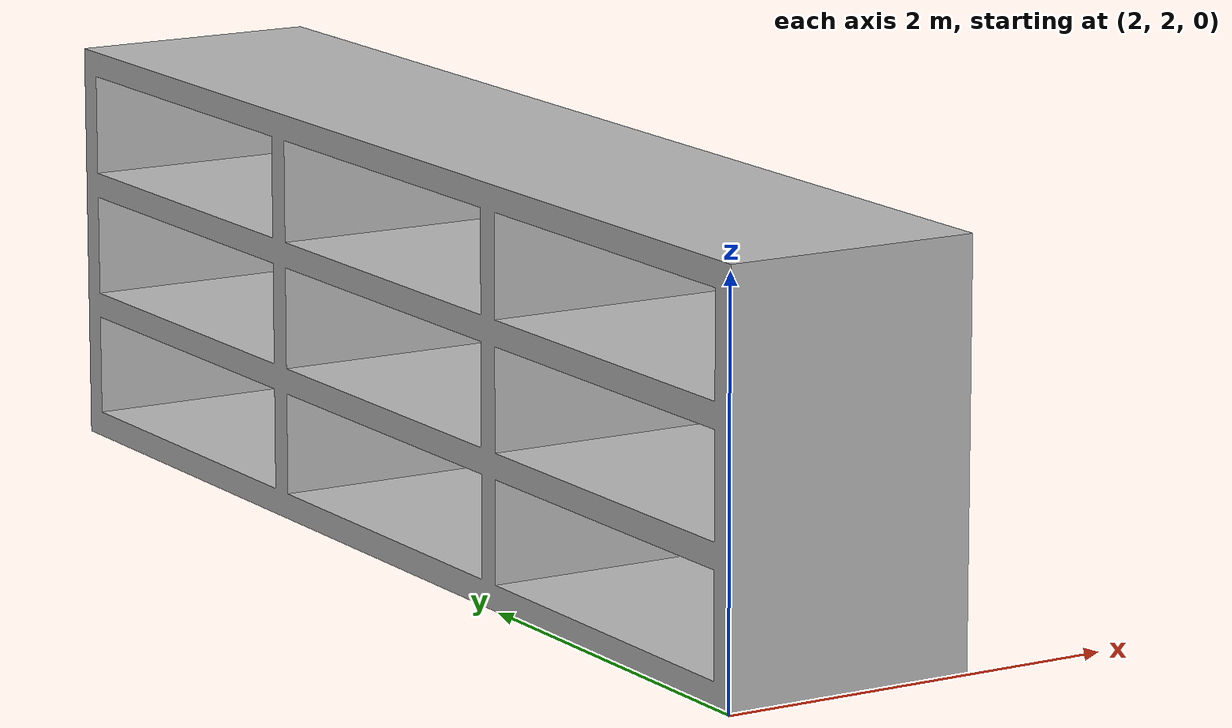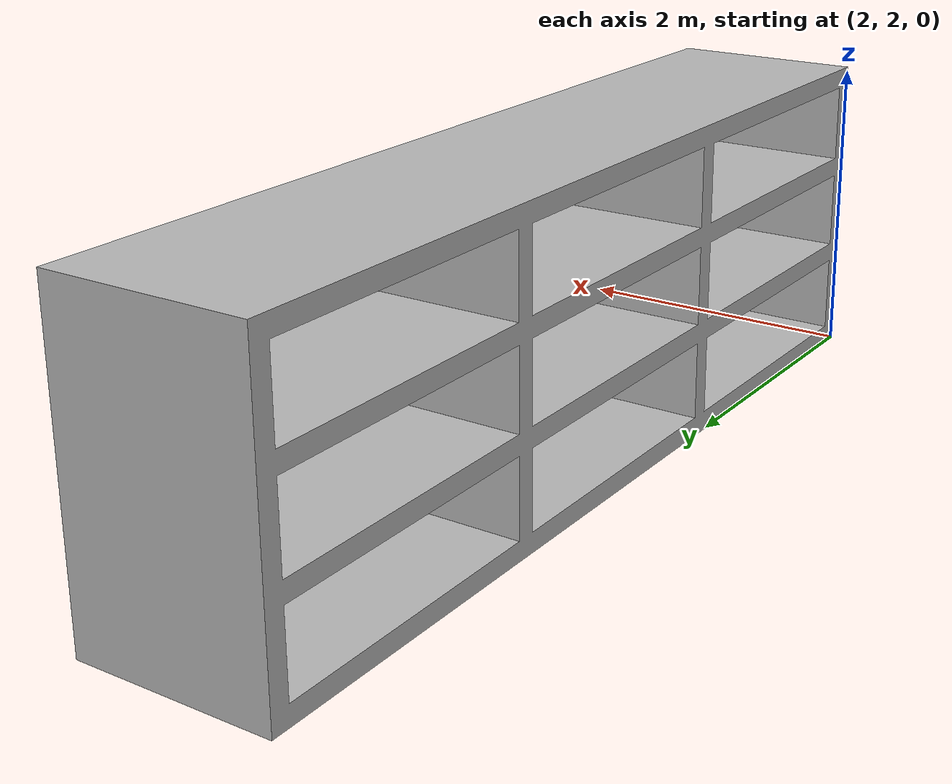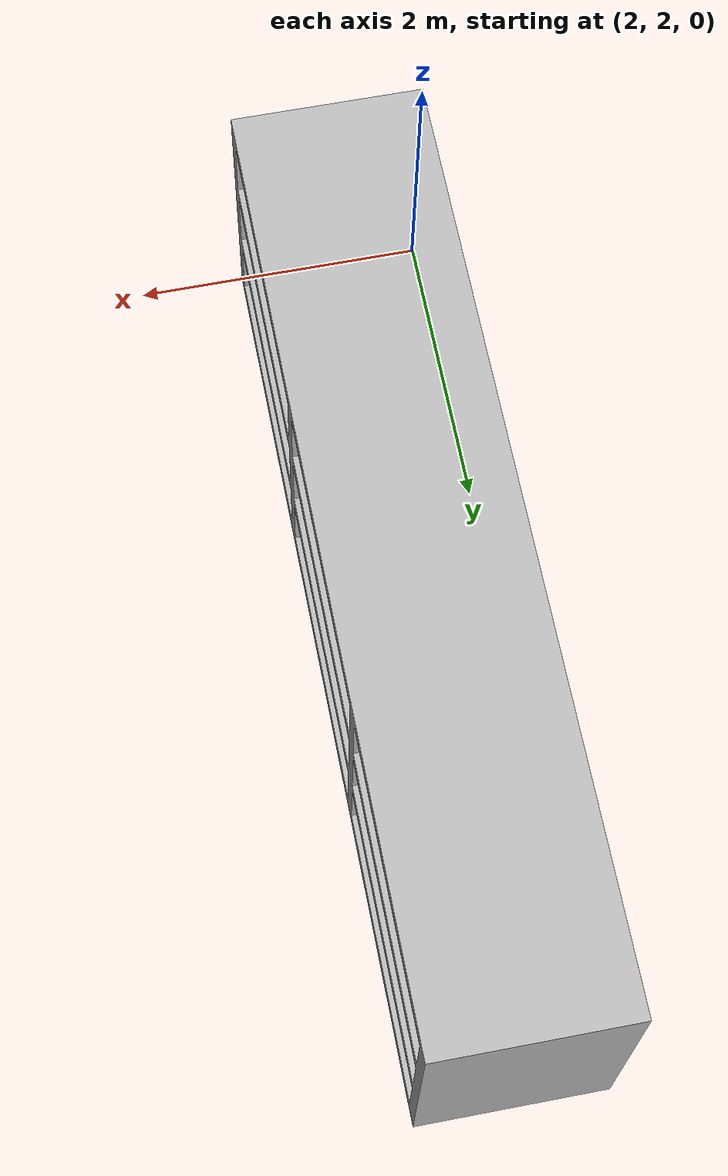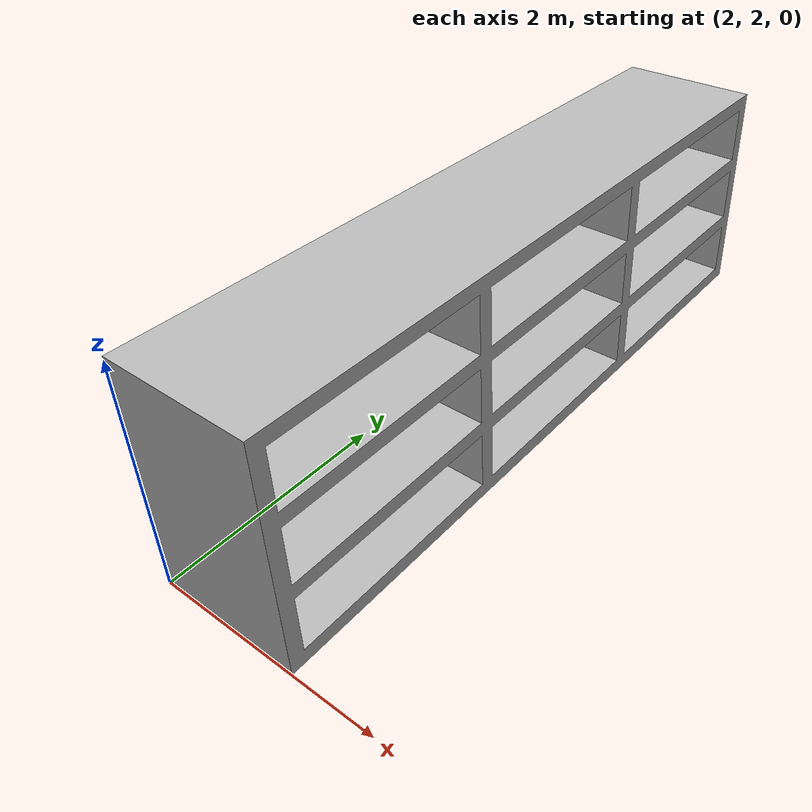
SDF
<?xml version="1.0" ?>
<sdf version="1.7">
  <model name="med_cabinet">
    <!-- Static so it doesn’t move when bumped -->
    <static>true</static>

    <link name="cabinet_link">
      <!-- Pose of the *link origin* relative to wherever you place the model in the world -->
      <pose>2 2 0 0 0 0</pose>

      <visual name="cabinet_visual">
        <geometry>
          <mesh>
            <!-- This URI is relative to GAZEBO_MODEL_PATH -->
            <uri>model://med_cabinet/meshes/cabinet.stl</uri>
            <scale>0.001 0.001 0.001</scale>
          </mesh>
        </geometry>
      </visual>

      <!-- For collisions you can reuse the mesh or approximate with boxes -->
      <collision name="cabinet_collision">
        <geometry>
          <mesh>
            <uri>model://med_cabinet/meshes/cabinet.stl</uri>
            <scale>0.001 0.001 0.001</scale>
          </mesh>
        </geometry>
      </collision>
    </link>
  </model>
</sdf>
